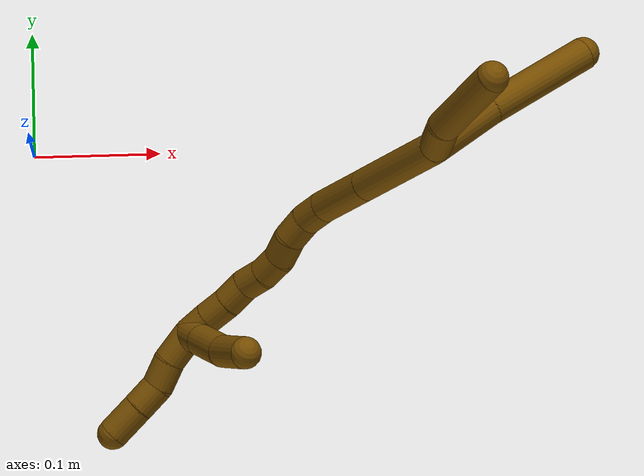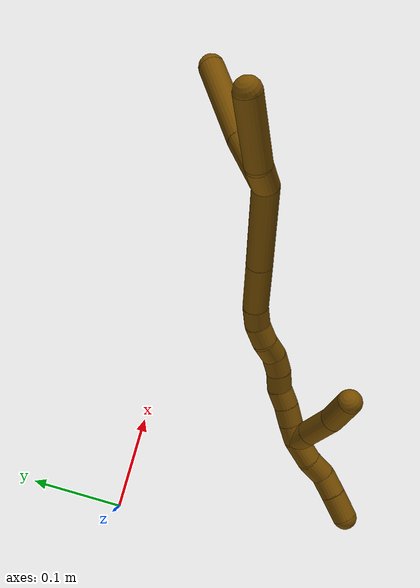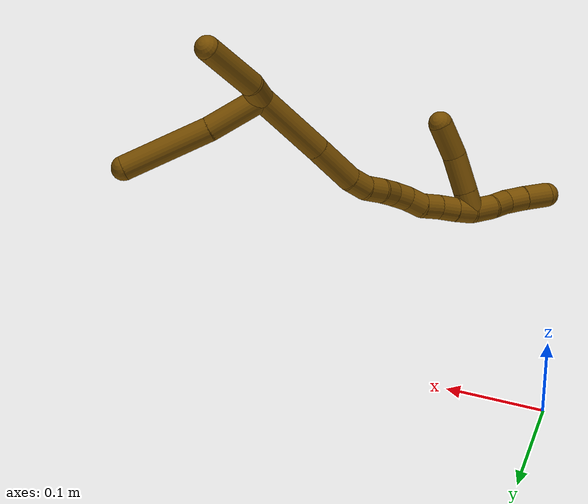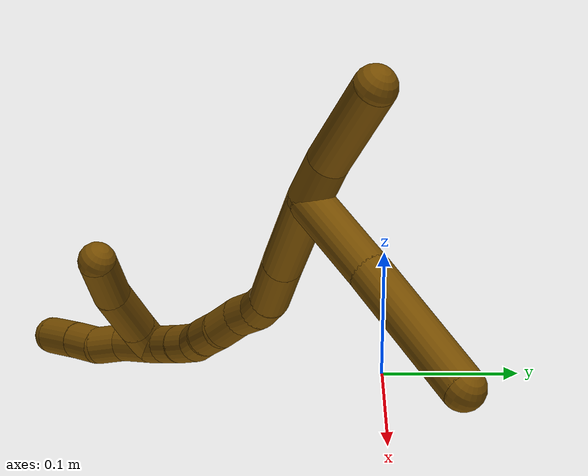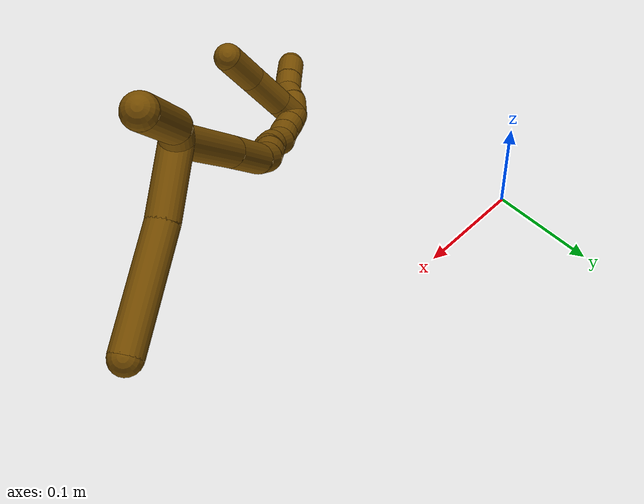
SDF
<sdf version="1.7">
 <world name="default">
  <model name="12">
   <static>0</static>
   <link name="12">
    <collision name="collision-cylinder-e_1_2_8">
     <pose>0.018874 0.022171 0.002139 -1.4746 0.702939 -0.642926</pose>
     <geometry><cylinder><radius>0.0125</radius><length>0.05839</length></cylinder></geometry>
     <surface>
      <friction><ode><mu>1.16</mu><mu2>1.16</mu2><slip1>0</slip1><slip2>0</slip2></ode></friction>
      <contact><ode><kp>1e+06</kp><kd>1</kd><max_vel>0</max_vel><min_depth>0.001</min_depth></ode></contact>
     </surface>
    </collision>
    <visual name="visual-cylinder-e_1_2_8">
     <pose>0.018874 0.022171 0.002139 -1.4746 0.702939 -0.642926</pose>
     <geometry><cylinder><radius>0.0125</radius><length>0.05839</length></cylinder></geometry>
     <material><ambient>0.466667 0.301961 0 1</ambient></material>
    </visual>
    <collision name="collision-cylinder-e_2_8_6">
     <pose>0.070065 0.076291 0.010018 -1.39307 0.783202 -0.66508</pose>
     <geometry><cylinder><radius>0.0125</radius><length>0.09161</length></cylinder></geometry>
     <surface>
      <friction><ode><mu>1.16</mu><mu2>1.16</mu2><slip1>0</slip1><slip2>0</slip2></ode></friction>
      <contact><ode><kp>1e+06</kp><kd>1</kd><max_vel>0</max_vel><min_depth>0.001</min_depth></ode></contact>
     </surface>
    </collision>
    <visual name="visual-cylinder-e_2_8_6">
     <pose>0.070065 0.076291 0.010018 -1.39307 0.783202 -0.66508</pose>
     <geometry><cylinder><radius>0.0125</radius><length>0.09161</length></cylinder></geometry>
     <material><ambient>0.466667 0.301961 0 1</ambient></material>
    </visual>
    <collision name="collision-cylinder-e_1_2_9">
     <pose>-0.000896 -0.000561 0.01446 0.038751 -0.061861 -0.001199</pose>
     <geometry><cylinder><radius>0.0125</radius><length>0.028998</length></cylinder></geometry>
     <surface>
      <friction><ode><mu>1.16</mu><mu2>1.16</mu2><slip1>0</slip1><slip2>0</slip2></ode></friction>
      <contact><ode><kp>1e+06</kp><kd>1</kd><max_vel>0</max_vel><min_depth>0.001</min_depth></ode></contact>
     </surface>
    </collision>
    <visual name="visual-cylinder-e_1_2_9">
     <pose>-0.000896 -0.000561 0.01446 0.038751 -0.061861 -0.001199</pose>
     <geometry><cylinder><radius>0.0125</radius><length>0.028998</length></cylinder></geometry>
     <material><ambient>0.466667 0.301961 0 1</ambient></material>
    </visual>
    <collision name="collision-cylinder-e_2_9_5">
     <pose>0.006087 -0.000832 0.063535 -0.008353 0.223832 -0.000939</pose>
     <geometry><cylinder><radius>0.0125</radius><length>0.071002</length></cylinder></geometry>
     <surface>
      <friction><ode><mu>1.16</mu><mu2>1.16</mu2><slip1>0</slip1><slip2>0</slip2></ode></friction>
      <contact><ode><kp>1e+06</kp><kd>1</kd><max_vel>0</max_vel><min_depth>0.001</min_depth></ode></contact>
     </surface>
    </collision>
    <visual name="visual-cylinder-e_2_9_5">
     <pose>0.006087 -0.000832 0.063535 -0.008353 0.223832 -0.000939</pose>
     <geometry><cylinder><radius>0.0125</radius><length>0.071002</length></cylinder></geometry>
     <material><ambient>0.466667 0.301961 0 1</ambient></material>
    </visual>
    <collision name="collision-cylinder-e_1_2_10">
     <pose>-0.016238 0.004381 -0.038768 -3.02907 -0.394392 2.59207</pose>
     <geometry><cylinder><radius>0.0125</radius><length>0.084517</length></cylinder></geometry>
     <surface>
      <friction><ode><mu>1.16</mu><mu2>1.16</mu2><slip1>0</slip1><slip2>0</slip2></ode></friction>
      <contact><ode><kp>1e+06</kp><kd>1</kd><max_vel>0</max_vel><min_depth>0.001</min_depth></ode></contact>
     </surface>
    </collision>
    <visual name="visual-cylinder-e_1_2_10">
     <pose>-0.016238 0.004381 -0.038768 -3.02907 -0.394392 2.59207</pose>
     <geometry><cylinder><radius>0.0125</radius><length>0.084517</length></cylinder></geometry>
     <material><ambient>0.466667 0.301961 0 1</ambient></material>
    </visual>
    <collision name="collision-cylinder-e_2_10_11">
     <pose>-0.0422 0.011738 -0.101332 -3.01716 -0.385251 2.52327</pose>
     <geometry><cylinder><radius>0.0125</radius><length>0.051757</length></cylinder></geometry>
     <surface>
      <friction><ode><mu>1.16</mu><mu2>1.16</mu2><slip1>0</slip1><slip2>0</slip2></ode></friction>
      <contact><ode><kp>1e+06</kp><kd>1</kd><max_vel>0</max_vel><min_depth>0.001</min_depth></ode></contact>
     </surface>
    </collision>
    <visual name="visual-cylinder-e_2_10_11">
     <pose>-0.0422 0.011738 -0.101332 -3.01716 -0.385251 2.52327</pose>
     <geometry><cylinder><radius>0.0125</radius><length>0.051757</length></cylinder></geometry>
     <material><ambient>0.466667 0.301961 0 1</ambient></material>
    </visual>
    <collision name="collision-cylinder-e_3_11_12">
     <pose>-0.056247 0.013908 -0.13501 3.06017 -0.411028 -2.75564</pose>
     <geometry><cylinder><radius>0.0125</radius><length>0.021631</length></cylinder></geometry>
     <surface>
      <friction><ode><mu>1.16</mu><mu2>1.16</mu2><slip1>0</slip1><slip2>0</slip2></ode></friction>
      <contact><ode><kp>1e+06</kp><kd>1</kd><max_vel>0</max_vel><min_depth>0.001</min_depth></ode></contact>
     </surface>
    </collision>
    <visual name="visual-cylinder-e_3_11_12">
     <pose>-0.056247 0.013908 -0.13501 3.06017 -0.411028 -2.75564</pose>
     <geometry><cylinder><radius>0.0125</radius><length>0.021631</length></cylinder></geometry>
     <material><ambient>0.466667 0.301961 0 1</ambient></material>
    </visual>
    <collision name="collision-cylinder-e_4_12_13">
     <pose>-0.063966 0.009439 -0.153915 2.75602 -0.335764 -1.42991</pose>
     <geometry><cylinder><radius>0.0125</radius><length>0.020627</length></cylinder></geometry>
     <surface>
      <friction><ode><mu>1.16</mu><mu2>1.16</mu2><slip1>0</slip1><slip2>0</slip2></ode></friction>
      <contact><ode><kp>1e+06</kp><kd>1</kd><max_vel>0</max_vel><min_depth>0.001</min_depth></ode></contact>
     </surface>
    </collision>
    <visual name="visual-cylinder-e_4_12_13">
     <pose>-0.063966 0.009439 -0.153915 2.75602 -0.335764 -1.42991</pose>
     <geometry><cylinder><radius>0.0125</radius><length>0.020627</length></cylinder></geometry>
     <material><ambient>0.466667 0.301961 0 1</ambient></material>
    </visual>
    <collision name="collision-cylinder-e_5_13_14">
     <pose>-0.068347 0.002452 -0.172655 2.81191 -0.095357 -0.558665</pose>
     <geometry><cylinder><radius>0.0125</radius><length>0.020635</length></cylinder></geometry>
     <surface>
      <friction><ode><mu>1.16</mu><mu2>1.16</mu2><slip1>0</slip1><slip2>0</slip2></ode></friction>
      <contact><ode><kp>1e+06</kp><kd>1</kd><max_vel>0</max_vel><min_depth>0.001</min_depth></ode></contact>
     </surface>
    </collision>
    <visual name="visual-cylinder-e_5_13_14">
     <pose>-0.068347 0.002452 -0.172655 2.81191 -0.095357 -0.558665</pose>
     <geometry><cylinder><radius>0.0125</radius><length>0.020635</length></cylinder></geometry>
     <material><ambient>0.466667 0.301961 0 1</ambient></material>
    </visual>
    <collision name="collision-cylinder-e_6_14_15">
     <pose>-0.072983 -0.003355 -0.191422 2.8739 -0.371329 -1.89767</pose>
     <geometry><cylinder><radius>0.0125</radius><length>0.02014</length></cylinder></geometry>
     <surface>
      <friction><ode><mu>1.16</mu><mu2>1.16</mu2><slip1>0</slip1><slip2>0</slip2></ode></friction>
      <contact><ode><kp>1e+06</kp><kd>1</kd><max_vel>0</max_vel><min_depth>0.001</min_depth></ode></contact>
     </surface>
    </collision>
    <visual name="visual-cylinder-e_6_14_15">
     <pose>-0.072983 -0.003355 -0.191422 2.8739 -0.371329 -1.89767</pose>
     <geometry><cylinder><radius>0.0125</radius><length>0.02014</length></cylinder></geometry>
     <material><ambient>0.466667 0.301961 0 1</ambient></material>
    </visual>
    <collision name="collision-cylinder-e_7_15_16">
     <pose>-0.081635 -0.006895 -0.209084 3.01934 -0.522527 -2.69155</pose>
     <geometry><cylinder><radius>0.0125</radius><length>0.020028</length></cylinder></geometry>
     <surface>
      <friction><ode><mu>1.16</mu><mu2>1.16</mu2><slip1>0</slip1><slip2>0</slip2></ode></friction>
      <contact><ode><kp>1e+06</kp><kd>1</kd><max_vel>0</max_vel><min_depth>0.001</min_depth></ode></contact>
     </surface>
    </collision>
    <visual name="visual-cylinder-e_7_15_16">
     <pose>-0.081635 -0.006895 -0.209084 3.01934 -0.522527 -2.69155</pose>
     <geometry><cylinder><radius>0.0125</radius><length>0.020028</length></cylinder></geometry>
     <material><ambient>0.466667 0.301961 0 1</ambient></material>
    </visual>
    <collision name="collision-cylinder-e_8_16_17">
     <pose>-0.090955 -0.012155 -0.225776 2.6621 -0.443233 -1.48939</pose>
     <geometry><cylinder><radius>0.0125</radius><length>0.02016</length></cylinder></geometry>
     <surface>
      <friction><ode><mu>1.16</mu><mu2>1.16</mu2><slip1>0</slip1><slip2>0</slip2></ode></friction>
      <contact><ode><kp>1e+06</kp><kd>1</kd><max_vel>0</max_vel><min_depth>0.001</min_depth></ode></contact>
     </surface>
    </collision>
    <visual name="visual-cylinder-e_8_16_17">
     <pose>-0.090955 -0.012155 -0.225776 2.6621 -0.443233 -1.48939</pose>
     <geometry><cylinder><radius>0.0125</radius><length>0.02016</length></cylinder></geometry>
     <material><ambient>0.466667 0.301961 0 1</ambient></material>
    </visual>
    <collision name="collision-cylinder-e_9_17_18">
     <pose>-0.100507 -0.019892 -0.241735 2.71973 -0.544392 -1.83287</pose>
     <geometry><cylinder><radius>0.0125</radius><length>0.020193</length></cylinder></geometry>
     <surface>
      <friction><ode><mu>1.16</mu><mu2>1.16</mu2><slip1>0</slip1><slip2>0</slip2></ode></friction>
      <contact><ode><kp>1e+06</kp><kd>1</kd><max_vel>0</max_vel><min_depth>0.001</min_depth></ode></contact>
     </surface>
    </collision>
    <visual name="visual-cylinder-e_9_17_18">
     <pose>-0.100507 -0.019892 -0.241735 2.71973 -0.544392 -1.83287</pose>
     <geometry><cylinder><radius>0.0125</radius><length>0.020193</length></cylinder></geometry>
     <material><ambient>0.466667 0.301961 0 1</ambient></material>
    </visual>
    <collision name="collision-cylinder-e_10_18_1">
     <pose>-0.110749 -0.027498 -0.257454 2.6627 -0.516214 -1.64895</pose>
     <geometry><cylinder><radius>0.0125</radius><length>0.020311</length></cylinder></geometry>
     <surface>
      <friction><ode><mu>1.16</mu><mu2>1.16</mu2><slip1>0</slip1><slip2>0</slip2></ode></friction>
      <contact><ode><kp>1e+06</kp><kd>1</kd><max_vel>0</max_vel><min_depth>0.001</min_depth></ode></contact>
     </surface>
    </collision>
    <visual name="visual-cylinder-e_10_18_1">
     <pose>-0.110749 -0.027498 -0.257454 2.6627 -0.516214 -1.64895</pose>
     <geometry><cylinder><radius>0.0125</radius><length>0.020311</length></cylinder></geometry>
     <material><ambient>0.466667 0.301961 0 1</ambient></material>
    </visual>
    <collision name="collision-cylinder-e_1_1_19">
     <pose>-0.112181 -0.038717 -0.257372 0.73423 0.323841 0.125467</pose>
     <geometry><cylinder><radius>0.0125</radius><length>0.022508</length></cylinder></geometry>
     <surface>
      <friction><ode><mu>1.16</mu><mu2>1.16</mu2><slip1>0</slip1><slip2>0</slip2></ode></friction>
      <contact><ode><kp>1e+06</kp><kd>1</kd><max_vel>0</max_vel><min_depth>0.001</min_depth></ode></contact>
     </surface>
    </collision>
    <visual name="visual-cylinder-e_1_1_19">
     <pose>-0.112181 -0.038717 -0.257372 0.73423 0.323841 0.125467</pose>
     <geometry><cylinder><radius>0.0125</radius><length>0.022508</length></cylinder></geometry>
     <material><ambient>0.466667 0.301961 0 1</ambient></material>
    </visual>
    <collision name="collision-cylinder-e_2_19_20">
     <pose>-0.102332 -0.058242 -0.23521 0.715447 0.320683 0.120764</pose>
     <geometry><cylinder><radius>0.0125</radius><length>0.039766</length></cylinder></geometry>
     <surface>
      <friction><ode><mu>1.16</mu><mu2>1.16</mu2><slip1>0</slip1><slip2>0</slip2></ode></friction>
      <contact><ode><kp>1e+06</kp><kd>1</kd><max_vel>0</max_vel><min_depth>0.001</min_depth></ode></contact>
     </surface>
    </collision>
    <visual name="visual-cylinder-e_2_19_20">
     <pose>-0.102332 -0.058242 -0.23521 0.715447 0.320683 0.120764</pose>
     <geometry><cylinder><radius>0.0125</radius><length>0.039766</length></cylinder></geometry>
     <material><ambient>0.466667 0.301961 0 1</ambient></material>
    </visual>
    <collision name="collision-cylinder-e_3_20_4">
     <pose>-0.090408 -0.079623 -0.205386 0.523948 0.304589 0.082262</pose>
     <geometry><cylinder><radius>0.0125</radius><length>0.037726</length></cylinder></geometry>
     <surface>
      <friction><ode><mu>1.16</mu><mu2>1.16</mu2><slip1>0</slip1><slip2>0</slip2></ode></friction>
      <contact><ode><kp>1e+06</kp><kd>1</kd><max_vel>0</max_vel><min_depth>0.001</min_depth></ode></contact>
     </surface>
    </collision>
    <visual name="visual-cylinder-e_3_20_4">
     <pose>-0.090408 -0.079623 -0.205386 0.523948 0.304589 0.082262</pose>
     <geometry><cylinder><radius>0.0125</radius><length>0.037726</length></cylinder></geometry>
     <material><ambient>0.466667 0.301961 0 1</ambient></material>
    </visual>
    <collision name="collision-cylinder-e_1_1_21">
     <pose>-0.120505 -0.039617 -0.274631 2.43028 -0.367292 -0.927353</pose>
     <geometry><cylinder><radius>0.0125</radius><length>0.026419</length></cylinder></geometry>
     <surface>
      <friction><ode><mu>1.16</mu><mu2>1.16</mu2><slip1>0</slip1><slip2>0</slip2></ode></friction>
      <contact><ode><kp>1e+06</kp><kd>1</kd><max_vel>0</max_vel><min_depth>0.001</min_depth></ode></contact>
     </surface>
    </collision>
    <visual name="visual-cylinder-e_1_1_21">
     <pose>-0.120505 -0.039617 -0.274631 2.43028 -0.367292 -0.927353</pose>
     <geometry><cylinder><radius>0.0125</radius><length>0.026419</length></cylinder></geometry>
     <material><ambient>0.466667 0.301961 0 1</ambient></material>
    </visual>
    <collision name="collision-cylinder-e_2_21_22">
     <pose>-0.126946 -0.054911 -0.292329 2.42736 -0.152257 -0.403307</pose>
     <geometry><cylinder><radius>0.0125</radius><length>0.022383</length></cylinder></geometry>
     <surface>
      <friction><ode><mu>1.16</mu><mu2>1.16</mu2><slip1>0</slip1><slip2>0</slip2></ode></friction>
      <contact><ode><kp>1e+06</kp><kd>1</kd><max_vel>0</max_vel><min_depth>0.001</min_depth></ode></contact>
     </surface>
    </collision>
    <visual name="visual-cylinder-e_2_21_22">
     <pose>-0.126946 -0.054911 -0.292329 2.42736 -0.152257 -0.403307</pose>
     <geometry><cylinder><radius>0.0125</radius><length>0.022383</length></cylinder></geometry>
     <material><ambient>0.466667 0.301961 0 1</ambient></material>
    </visual>
    <collision name="collision-cylinder-e_3_22_23">
     <pose>-0.133869 -0.069111 -0.307869 2.37238 -0.481691 -1.09082</pose>
     <geometry><cylinder><radius>0.0125</radius><length>0.022559</length></cylinder></geometry>
     <surface>
      <friction><ode><mu>1.16</mu><mu2>1.16</mu2><slip1>0</slip1><slip2>0</slip2></ode></friction>
      <contact><ode><kp>1e+06</kp><kd>1</kd><max_vel>0</max_vel><min_depth>0.001</min_depth></ode></contact>
     </surface>
    </collision>
    <visual name="visual-cylinder-e_3_22_23">
     <pose>-0.133869 -0.069111 -0.307869 2.37238 -0.481691 -1.09082</pose>
     <geometry><cylinder><radius>0.0125</radius><length>0.022559</length></cylinder></geometry>
     <material><ambient>0.466667 0.301961 0 1</ambient></material>
    </visual>
    <collision name="collision-cylinder-e_4_23_3">
     <pose>-0.145721 -0.084362 -0.324657 2.42905 -0.481121 -1.16559</pose>
     <geometry><cylinder><radius>0.0125</radius><length>0.028638</length></cylinder></geometry>
     <surface>
      <friction><ode><mu>1.16</mu><mu2>1.16</mu2><slip1>0</slip1><slip2>0</slip2></ode></friction>
      <contact><ode><kp>1e+06</kp><kd>1</kd><max_vel>0</max_vel><min_depth>0.001</min_depth></ode></contact>
     </surface>
    </collision>
    <visual name="visual-cylinder-e_4_23_3">
     <pose>-0.145721 -0.084362 -0.324657 2.42905 -0.481121 -1.16559</pose>
     <geometry><cylinder><radius>0.0125</radius><length>0.028638</length></cylinder></geometry>
     <material><ambient>0.466667 0.301961 0 1</ambient></material>
    </visual>
    <collision name="collision-sphere-3">
     <pose>-0.152348 -0.092661 -0.334262 0 -0 0</pose>
     <geometry><sphere><radius>0.0125</radius></sphere></geometry>
     <surface>
      <friction><ode><mu>1.16</mu><mu2>1.16</mu2><slip1>0</slip1><slip2>0</slip2></ode></friction>
      <contact><ode><kp>1e+06</kp><kd>1</kd><max_vel>0</max_vel><min_depth>0.001</min_depth></ode></contact>
     </surface>
    </collision>
    <visual name="visual-sphere-3">
     <pose>-0.152348 -0.092661 -0.334262 0 -0 0</pose>
     <geometry><sphere><radius>0.0125</radius></sphere></geometry>
     <material><ambient>0.466667 0.301961 0 1</ambient></material>
    </visual>
    <collision name="collision-sphere-23">
     <pose>-0.139095 -0.076064 -0.315051 0 -0 0</pose>
     <geometry><sphere><radius>0.0125</radius></sphere></geometry>
     <surface>
      <friction><ode><mu>1.16</mu><mu2>1.16</mu2><slip1>0</slip1><slip2>0</slip2></ode></friction>
      <contact><ode><kp>1e+06</kp><kd>1</kd><max_vel>0</max_vel><min_depth>0.001</min_depth></ode></contact>
     </surface>
    </collision>
    <visual name="visual-sphere-23">
     <pose>-0.139095 -0.076064 -0.315051 0 -0 0</pose>
     <geometry><sphere><radius>0.0125</radius></sphere></geometry>
     <material><ambient>0.466667 0.301961 0 1</ambient></material>
    </visual>
    <collision name="collision-sphere-22">
     <pose>-0.128644 -0.062158 -0.300688 0 -0 0</pose>
     <geometry><sphere><radius>0.0125</radius></sphere></geometry>
     <surface>
      <friction><ode><mu>1.16</mu><mu2>1.16</mu2><slip1>0</slip1><slip2>0</slip2></ode></friction>
      <contact><ode><kp>1e+06</kp><kd>1</kd><max_vel>0</max_vel><min_depth>0.001</min_depth></ode></contact>
     </surface>
    </collision>
    <visual name="visual-sphere-22">
     <pose>-0.128644 -0.062158 -0.300688 0 -0 0</pose>
     <geometry><sphere><radius>0.0125</radius></sphere></geometry>
     <material><ambient>0.466667 0.301961 0 1</ambient></material>
    </visual>
    <collision name="collision-sphere-21">
     <pose>-0.125249 -0.047665 -0.28397 0 -0 0</pose>
     <geometry><sphere><radius>0.0125</radius></sphere></geometry>
     <surface>
      <friction><ode><mu>1.16</mu><mu2>1.16</mu2><slip1>0</slip1><slip2>0</slip2></ode></friction>
      <contact><ode><kp>1e+06</kp><kd>1</kd><max_vel>0</max_vel><min_depth>0.001</min_depth></ode></contact>
     </surface>
    </collision>
    <visual name="visual-sphere-21">
     <pose>-0.125249 -0.047665 -0.28397 0 -0 0</pose>
     <geometry><sphere><radius>0.0125</radius></sphere></geometry>
     <material><ambient>0.466667 0.301961 0 1</ambient></material>
    </visual>
    <collision name="collision-sphere-4">
     <pose>-0.084751 -0.088626 -0.189805 0 -0 0</pose>
     <geometry><sphere><radius>0.0125</radius></sphere></geometry>
     <surface>
      <friction><ode><mu>1.16</mu><mu2>1.16</mu2><slip1>0</slip1><slip2>0</slip2></ode></friction>
      <contact><ode><kp>1e+06</kp><kd>1</kd><max_vel>0</max_vel><min_depth>0.001</min_depth></ode></contact>
     </surface>
    </collision>
    <visual name="visual-sphere-4">
     <pose>-0.084751 -0.088626 -0.189805 0 -0 0</pose>
     <geometry><sphere><radius>0.0125</radius></sphere></geometry>
     <material><ambient>0.466667 0.301961 0 1</ambient></material>
    </visual>
    <collision name="collision-sphere-20">
     <pose>-0.096065 -0.07062 -0.220967 0 -0 0</pose>
     <geometry><sphere><radius>0.0125</radius></sphere></geometry>
     <surface>
      <friction><ode><mu>1.16</mu><mu2>1.16</mu2><slip1>0</slip1><slip2>0</slip2></ode></friction>
      <contact><ode><kp>1e+06</kp><kd>1</kd><max_vel>0</max_vel><min_depth>0.001</min_depth></ode></contact>
     </surface>
    </collision>
    <visual name="visual-sphere-20">
     <pose>-0.096065 -0.07062 -0.220967 0 -0 0</pose>
     <geometry><sphere><radius>0.0125</radius></sphere></geometry>
     <material><ambient>0.466667 0.301961 0 1</ambient></material>
    </visual>
    <collision name="collision-sphere-10">
     <pose>-0.032475 0.008761 -0.077535 0 -0 0</pose>
     <geometry><sphere><radius>0.0125</radius></sphere></geometry>
     <surface>
      <friction><ode><mu>1.16</mu><mu2>1.16</mu2><slip1>0</slip1><slip2>0</slip2></ode></friction>
      <contact><ode><kp>1e+06</kp><kd>1</kd><max_vel>0</max_vel><min_depth>0.001</min_depth></ode></contact>
     </surface>
    </collision>
    <visual name="visual-sphere-10">
     <pose>-0.032475 0.008761 -0.077535 0 -0 0</pose>
     <geometry><sphere><radius>0.0125</radius></sphere></geometry>
     <material><ambient>0.466667 0.301961 0 1</ambient></material>
    </visual>
    <collision name="collision-sphere-5">
     <pose>0.013968 -0.000543 0.098149 0 -0 0</pose>
     <geometry><sphere><radius>0.0125</radius></sphere></geometry>
     <surface>
      <friction><ode><mu>1.16</mu><mu2>1.16</mu2><slip1>0</slip1><slip2>0</slip2></ode></friction>
      <contact><ode><kp>1e+06</kp><kd>1</kd><max_vel>0</max_vel><min_depth>0.001</min_depth></ode></contact>
     </surface>
    </collision>
    <visual name="visual-sphere-5">
     <pose>0.013968 -0.000543 0.098149 0 -0 0</pose>
     <geometry><sphere><radius>0.0125</radius></sphere></geometry>
     <material><ambient>0.466667 0.301961 0 1</ambient></material>
    </visual>
    <collision name="collision-sphere-6">
     <pose>0.102383 0.10824 0.015756 0 -0 0</pose>
     <geometry><sphere><radius>0.0125</radius></sphere></geometry>
     <surface>
      <friction><ode><mu>1.16</mu><mu2>1.16</mu2><slip1>0</slip1><slip2>0</slip2></ode></friction>
      <contact><ode><kp>1e+06</kp><kd>1</kd><max_vel>0</max_vel><min_depth>0.001</min_depth></ode></contact>
     </surface>
    </collision>
    <visual name="visual-sphere-6">
     <pose>0.102383 0.10824 0.015756 0 -0 0</pose>
     <geometry><sphere><radius>0.0125</radius></sphere></geometry>
     <material><ambient>0.466667 0.301961 0 1</ambient></material>
    </visual>
    <collision name="collision-sphere-9">
     <pose>-0.001793 -0.001121 0.028921 0 -0 0</pose>
     <geometry><sphere><radius>0.0125</radius></sphere></geometry>
     <surface>
      <friction><ode><mu>1.16</mu><mu2>1.16</mu2><slip1>0</slip1><slip2>0</slip2></ode></friction>
      <contact><ode><kp>1e+06</kp><kd>1</kd><max_vel>0</max_vel><min_depth>0.001</min_depth></ode></contact>
     </surface>
    </collision>
    <visual name="visual-sphere-9">
     <pose>-0.001793 -0.001121 0.028921 0 -0 0</pose>
     <geometry><sphere><radius>0.0125</radius></sphere></geometry>
     <material><ambient>0.466667 0.301961 0 1</ambient></material>
    </visual>
    <collision name="collision-sphere-2">
     <geometry><sphere><radius>0.0125</radius></sphere></geometry>
     <surface>
      <friction><ode><mu>1.16</mu><mu2>1.16</mu2><slip1>0</slip1><slip2>0</slip2></ode></friction>
      <contact><ode><kp>1e+06</kp><kd>1</kd><max_vel>0</max_vel><min_depth>0.001</min_depth></ode></contact>
     </surface>
    </collision>
    <visual name="visual-sphere-2">
     <geometry><sphere><radius>0.0125</radius></sphere></geometry>
     <material><ambient>0.466667 0.301961 0 1</ambient></material>
    </visual>
    <collision name="collision-sphere-19">
     <pose>-0.1086 -0.045865 -0.249452 0 -0 0</pose>
     <geometry><sphere><radius>0.0125</radius></sphere></geometry>
     <surface>
      <friction><ode><mu>1.16</mu><mu2>1.16</mu2><slip1>0</slip1><slip2>0</slip2></ode></friction>
      <contact><ode><kp>1e+06</kp><kd>1</kd><max_vel>0</max_vel><min_depth>0.001</min_depth></ode></contact>
     </surface>
    </collision>
    <visual name="visual-sphere-19">
     <pose>-0.1086 -0.045865 -0.249452 0 -0 0</pose>
     <geometry><sphere><radius>0.0125</radius></sphere></geometry>
     <material><ambient>0.466667 0.301961 0 1</ambient></material>
    </visual>
    <collision name="collision-sphere-8">
     <pose>0.037747 0.044343 0.004279 0 -0 0</pose>
     <geometry><sphere><radius>0.0125</radius></sphere></geometry>
     <surface>
      <friction><ode><mu>1.16</mu><mu2>1.16</mu2><slip1>0</slip1><slip2>0</slip2></ode></friction>
      <contact><ode><kp>1e+06</kp><kd>1</kd><max_vel>0</max_vel><min_depth>0.001</min_depth></ode></contact>
     </surface>
    </collision>
    <visual name="visual-sphere-8">
     <pose>0.037747 0.044343 0.004279 0 -0 0</pose>
     <geometry><sphere><radius>0.0125</radius></sphere></geometry>
     <material><ambient>0.466667 0.301961 0 1</ambient></material>
    </visual>
    <collision name="collision-sphere-11">
     <pose>-0.051925 0.014714 -0.125128 0 -0 0</pose>
     <geometry><sphere><radius>0.0125</radius></sphere></geometry>
     <surface>
      <friction><ode><mu>1.16</mu><mu2>1.16</mu2><slip1>0</slip1><slip2>0</slip2></ode></friction>
      <contact><ode><kp>1e+06</kp><kd>1</kd><max_vel>0</max_vel><min_depth>0.001</min_depth></ode></contact>
     </surface>
    </collision>
    <visual name="visual-sphere-11">
     <pose>-0.051925 0.014714 -0.125128 0 -0 0</pose>
     <geometry><sphere><radius>0.0125</radius></sphere></geometry>
     <material><ambient>0.466667 0.301961 0 1</ambient></material>
    </visual>
    <collision name="collision-sphere-12">
     <pose>-0.060568 0.013101 -0.144892 0 -0 0</pose>
     <geometry><sphere><radius>0.0125</radius></sphere></geometry>
     <surface>
      <friction><ode><mu>1.16</mu><mu2>1.16</mu2><slip1>0</slip1><slip2>0</slip2></ode></friction>
      <contact><ode><kp>1e+06</kp><kd>1</kd><max_vel>0</max_vel><min_depth>0.001</min_depth></ode></contact>
     </surface>
    </collision>
    <visual name="visual-sphere-12">
     <pose>-0.060568 0.013101 -0.144892 0 -0 0</pose>
     <geometry><sphere><radius>0.0125</radius></sphere></geometry>
     <material><ambient>0.466667 0.301961 0 1</ambient></material>
    </visual>
    <collision name="collision-sphere-13">
     <pose>-0.067365 0.005777 -0.162938 0 -0 0</pose>
     <geometry><sphere><radius>0.0125</radius></sphere></geometry>
     <surface>
      <friction><ode><mu>1.16</mu><mu2>1.16</mu2><slip1>0</slip1><slip2>0</slip2></ode></friction>
      <contact><ode><kp>1e+06</kp><kd>1</kd><max_vel>0</max_vel><min_depth>0.001</min_depth></ode></contact>
     </surface>
    </collision>
    <visual name="visual-sphere-13">
     <pose>-0.067365 0.005777 -0.162938 0 -0 0</pose>
     <geometry><sphere><radius>0.0125</radius></sphere></geometry>
     <material><ambient>0.466667 0.301961 0 1</ambient></material>
    </visual>
    <collision name="collision-sphere-14">
     <pose>-0.069329 -0.000873 -0.182372 0 -0 0</pose>
     <geometry><sphere><radius>0.0125</radius></sphere></geometry>
     <surface>
      <friction><ode><mu>1.16</mu><mu2>1.16</mu2><slip1>0</slip1><slip2>0</slip2></ode></friction>
      <contact><ode><kp>1e+06</kp><kd>1</kd><max_vel>0</max_vel><min_depth>0.001</min_depth></ode></contact>
     </surface>
    </collision>
    <visual name="visual-sphere-14">
     <pose>-0.069329 -0.000873 -0.182372 0 -0 0</pose>
     <geometry><sphere><radius>0.0125</radius></sphere></geometry>
     <material><ambient>0.466667 0.301961 0 1</ambient></material>
    </visual>
    <collision name="collision-sphere-15">
     <pose>-0.076637 -0.005837 -0.200471 0 -0 0</pose>
     <geometry><sphere><radius>0.0125</radius></sphere></geometry>
     <surface>
      <friction><ode><mu>1.16</mu><mu2>1.16</mu2><slip1>0</slip1><slip2>0</slip2></ode></friction>
      <contact><ode><kp>1e+06</kp><kd>1</kd><max_vel>0</max_vel><min_depth>0.001</min_depth></ode></contact>
     </surface>
    </collision>
    <visual name="visual-sphere-15">
     <pose>-0.076637 -0.005837 -0.200471 0 -0 0</pose>
     <geometry><sphere><radius>0.0125</radius></sphere></geometry>
     <material><ambient>0.466667 0.301961 0 1</ambient></material>
    </visual>
    <collision name="collision-sphere-16">
     <pose>-0.086632 -0.007954 -0.217697 0 -0 0</pose>
     <geometry><sphere><radius>0.0125</radius></sphere></geometry>
     <surface>
      <friction><ode><mu>1.16</mu><mu2>1.16</mu2><slip1>0</slip1><slip2>0</slip2></ode></friction>
      <contact><ode><kp>1e+06</kp><kd>1</kd><max_vel>0</max_vel><min_depth>0.001</min_depth></ode></contact>
     </surface>
    </collision>
    <visual name="visual-sphere-16">
     <pose>-0.086632 -0.007954 -0.217697 0 -0 0</pose>
     <geometry><sphere><radius>0.0125</radius></sphere></geometry>
     <material><ambient>0.466667 0.301961 0 1</ambient></material>
    </visual>
    <collision name="collision-sphere-17">
     <pose>-0.095278 -0.016355 -0.233855 0 -0 0</pose>
     <geometry><sphere><radius>0.0125</radius></sphere></geometry>
     <surface>
      <friction><ode><mu>1.16</mu><mu2>1.16</mu2><slip1>0</slip1><slip2>0</slip2></ode></friction>
      <contact><ode><kp>1e+06</kp><kd>1</kd><max_vel>0</max_vel><min_depth>0.001</min_depth></ode></contact>
     </surface>
    </collision>
    <visual name="visual-sphere-17">
     <pose>-0.095278 -0.016355 -0.233855 0 -0 0</pose>
     <geometry><sphere><radius>0.0125</radius></sphere></geometry>
     <material><ambient>0.466667 0.301961 0 1</ambient></material>
    </visual>
    <collision name="collision-sphere-18">
     <pose>-0.105736 -0.023429 -0.249615 0 -0 0</pose>
     <geometry><sphere><radius>0.0125</radius></sphere></geometry>
     <surface>
      <friction><ode><mu>1.16</mu><mu2>1.16</mu2><slip1>0</slip1><slip2>0</slip2></ode></friction>
      <contact><ode><kp>1e+06</kp><kd>1</kd><max_vel>0</max_vel><min_depth>0.001</min_depth></ode></contact>
     </surface>
    </collision>
    <visual name="visual-sphere-18">
     <pose>-0.105736 -0.023429 -0.249615 0 -0 0</pose>
     <geometry><sphere><radius>0.0125</radius></sphere></geometry>
     <material><ambient>0.466667 0.301961 0 1</ambient></material>
    </visual>
    <collision name="collision-sphere-1">
     <pose>-0.115762 -0.031568 -0.265292 0 -0 0</pose>
     <geometry><sphere><radius>0.0125</radius></sphere></geometry>
     <surface>
      <friction><ode><mu>1.16</mu><mu2>1.16</mu2><slip1>0</slip1><slip2>0</slip2></ode></friction>
      <contact><ode><kp>1e+06</kp><kd>1</kd><max_vel>0</max_vel><min_depth>0.001</min_depth></ode></contact>
     </surface>
    </collision>
    <visual name="visual-sphere-1">
     <pose>-0.115762 -0.031568 -0.265292 0 -0 0</pose>
     <geometry><sphere><radius>0.0125</radius></sphere></geometry>
     <material><ambient>0.466667 0.301961 0 1</ambient></material>
    </visual>
    <inertial>
     <pose>-0.042689 -0.005495 -0.11713 0 -0 0</pose>
     <mass>0.75</mass>
     <inertia><ixx>2.9e-05</ixx><ixy>0</ixy><ixz>0</ixz><iyy>0.000132</iyy><iyz>0</iyz><izz>-0.0001</izz></inertia>
    </inertial>
   </link>
   <pose>0.309855 -0.05822 0.290389 -0.453524 0.202889 -0.24043</pose>
  </model>
 </world>
</sdf>
